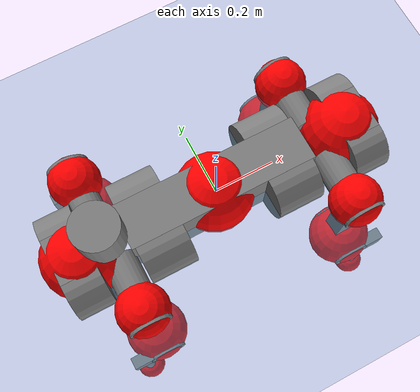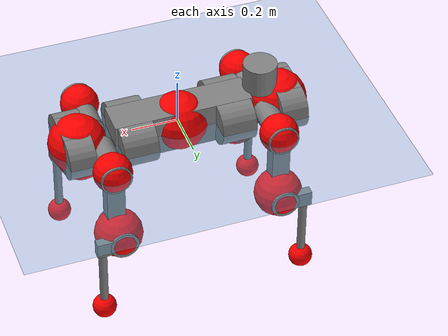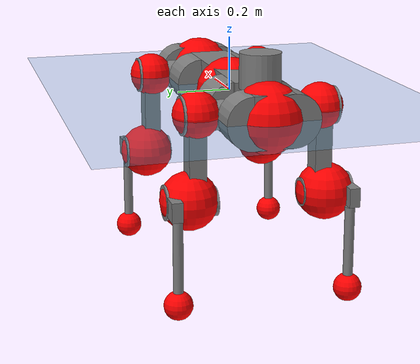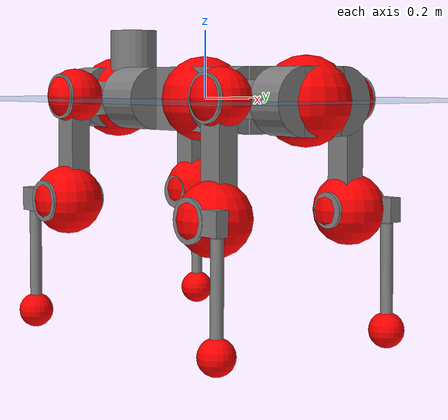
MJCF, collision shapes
<mujoco model="anymal_c">
  <compiler angle="radian" assetdir="assets" balanceinertia="true" inertiafromgeom="false"/>

  <option timestep="0.005" density="1.2" viscosity="2e-05"/>

  <size nkey="1"/>

  <visual>
    <quality shadowsize="8192"/>
    <map shadowclip="0.5"/>
  </visual>

  <default>
    <default class="/">
      <material specular="0" shininess="0.25"/>
      <geom contype="0" conaffinity="0" group="1" solref="-1000 -80"/>
      <site size="0.01 0.005 0.005" group="5"/>
      <general forcelimited="true" forcerange="-80 80" biastype="affine" gainprm="80" biasprm="0 -80 -2"/>
      <default class="anymal_c">
        <joint armature="0.01" damping="0.01" frictionloss="0.1"/>
        <default class="visual">
          <geom type="mesh" group="2"/>
          <default class="visual_zflip"/>
        </default>
        <default class="collision">
          <geom type="cylinder" group="3"/>
          <default class="foot">
            <geom size="0.03 0 0" type="sphere" condim="6" priority="1" friction="0.8 0.02 0.01" solimp="0.015 1 0.03"/>
          </default>
        </default>
      </default>
      <default class="reward_collision_sphere">
        <geom group="5" rgba="1 0 0 1"/>
      </default>
    </default>
  </default>

  <asset>
    <texture type="skybox" colorspace="auto" name="//unnamed_texture_0" builtin="gradient" rgb1="0.95 0.95 0.95" rgb2="0.95 0.95 0.95" width="100" height="600"/>
    <texture type="2d" colorspace="auto" name="texplane" builtin="checker" rgb1="0.345 0.575 0.748" rgb2="0.345 0.575 0.748" markrgb="1 1 1" width="512" height="512"/>
    <texture type="2d" colorspace="linear" name="base" file="base.png"/>
    <texture type="2d" colorspace="linear" name="top_shell" file="top_shell.png"/>
    <texture type="2d" colorspace="linear" name="bottom_shell" file="bottom_shell.png"/>
    <texture type="2d" colorspace="linear" name="remote" file="remote.png"/>
    <texture type="2d" colorspace="linear" name="hatch" file="hatch.png"/>
    <texture type="2d" colorspace="linear" name="handle" file="handle.png"/>
    <texture type="2d" colorspace="linear" name="face" file="face.png"/>
    <texture type="2d" colorspace="linear" name="battery" file="battery.png"/>
    <texture type="2d" colorspace="linear" name="lidar_cage" file="lidar_cage.png"/>
    <texture type="2d" colorspace="linear" name="depth_camera" file="depth_camera.png"/>
    <texture type="2d" colorspace="linear" name="wide_angle_camera" file="wide_angle_camera.png"/>
    <texture type="2d" colorspace="linear" name="lidar" file="lidar.png"/>
    <texture type="2d" colorspace="linear" name="drive" file="drive.png"/>
    <texture type="2d" colorspace="linear" name="hip_l" file="hip_l.png"/>
    <texture type="2d" colorspace="linear" name="shank_l" file="shank_l.png"/>
    <texture type="2d" colorspace="linear" name="foot" file="foot.png"/>
    <texture type="2d" colorspace="linear" name="thigh" file="thigh.png"/>
    <texture type="2d" colorspace="linear" name="shank_r" file="shank_r.png"/>
    <texture type="2d" colorspace="linear" name="hip_r" file="hip_r.png"/>
    <material name="MatPlane" class="/" texture="texplane" texuniform="true" texrepeat="2 2" specular="0.9" shininess="0.5"/>
    <material name="black_plastic" class="/" rgba="0.007 0.007 0.007 1"/>
    <material name="green" class="/" rgba="0.052 0.178 0.033 1"/>
    <material name="red" class="/" rgba="0.178 0.006 0.005 1"/>
    <material name="yellow" class="/" rgba="0.178 0.119 0.006 1"/>
    <material name="lwl" class="/" rgba="0.8 0.8 0.8 1"/>
    <material name="base" class="/" texture="base"/>
    <material name="top_shell" class="/" texture="top_shell"/>
    <material name="bottom_shell" class="/" texture="bottom_shell"/>
    <material name="hip_l" class="/" texture="hip_l"/>
    <material name="thigh" class="/" texture="thigh"/>
    <material name="shank_l" class="/" texture="shank_l"/>
    <material name="foot" class="/" texture="foot"/>
    <material name="hip_r" class="/" texture="hip_r"/>
    <material name="shank" class="/" texture="shank_r"/>
    <material name="hatch" class="/" texture="hatch"/>
    <material name="remote" class="/" texture="remote"/>
    <material name="handle" class="/" texture="handle"/>
    <material name="face" class="/" texture="face"/>
    <material name="depth_camera" class="/" texture="depth_camera"/>
    <material name="wide_angle_camera" class="/" texture="wide_angle_camera"/>
    <material name="battery" class="/" texture="battery"/>
    <material name="lidar_cage" class="/" texture="lidar_cage"/>
    <material name="lidar" class="/" texture="lidar"/>
    <material name="drive" class="/" texture="drive"/>
    <mesh name="base_0" class="/" file="base_0.obj"/>
    <mesh name="base_1" class="/" file="base_1.obj"/>
    <mesh name="base_2" class="/" file="base_2.obj"/>
    <mesh name="base_3" class="/" file="base_3.obj"/>
    <mesh name="base_4" class="/" file="base_4.obj"/>
    <mesh name="base_5" class="/" file="base_5.obj"/>
    <mesh name="top_shell" class="/" file="top_shell.obj"/>
    <mesh name="bottom_shell" class="/" file="bottom_shell.obj"/>
    <mesh name="remote" class="/" file="remote.obj"/>
    <mesh name="handle" class="/" file="handle.obj"/>
    <mesh name="face" class="/" file="face.obj"/>
    <mesh name="wide_angle_camera" class="/" file="wide_angle_camera.obj"/>
    <mesh name="depth_camera" class="/" file="depth_camera.obj"/>
    <mesh name="battery" class="/" file="battery.obj"/>
    <mesh name="lidar_cage" class="/" file="lidar_cage.obj"/>
    <mesh name="lidar" class="/" file="lidar.obj"/>
    <mesh name="drive" class="/" file="drive.obj"/>
    <mesh name="hip_l" class="/" file="hip_l.obj"/>
    <mesh name="thigh" class="/" file="thigh.obj"/>
    <mesh name="shank_l" class="/" file="shank_l.obj"/>
    <mesh name="foot" class="/" file="foot.obj"/>
    <mesh name="hip_r" class="/" file="hip_r.obj"/>
    <mesh name="hatch" class="/" file="hatch.obj"/>
    <mesh name="shank_r" class="/" file="shank_r.obj"/>
  </asset>

  <worldbody>
    <geom name="floor" class="/" size="100 100 0.125" type="plane" group="0" material="MatPlane"/>
    <light name="toplight_shadow" class="/" pos="0 0 5" dir="0.0990148 0.0990148 -0.990148" type="directional" ambient="0.04 0.04 0.04" diffuse="0.55 0.55 0.55" specular="0.12 0.12 0.12"/>
    <light name="toplight_fill" class="/" pos="0 0 5" dir="0.0990148 0.0990148 -0.990148" type="directional" castshadow="false" ambient="0.04 0.04 0.04" diffuse="0.3 0.3 0.3" specular="0.08 0.08 0.08"/>
    <body name="trunk" childclass="anymal_c" pos="-0.00599603 0.000105289 -0.0019865" quat="1 7.29375e-05 0.000760087 -0.000104515">
      <inertial pos="0.0024287 -0.00302703 0.0544391" quat="0.493929 0.501877 0.50112 0.503023" mass="22.6432" diaginertia="0.550077 0.694799 0.35623"/>
      <joint name="//unnamed_joint_0" type="free" armature="0" damping="0" frictionloss="0"/>
      <geom name="//unnamed_geom_1" class="visual" material="green" mesh="base_0"/>
      <geom name="//unnamed_geom_2" class="visual" material="yellow" mesh="base_1"/>
      <geom name="//unnamed_geom_3" class="visual" material="red" mesh="base_2"/>
      <geom name="//unnamed_geom_4" class="visual" material="black_plastic" mesh="base_3"/>
      <geom name="//unnamed_geom_5" class="visual" material="lwl" mesh="base_4"/>
      <geom name="//unnamed_geom_6" class="visual" material="base" mesh="base_5"/>
      <geom name="trunk_1" class="collision" size="0.304264 0.0734431 0.0944268" type="box"/>
      <geom name="trunk_2" class="collision" size="0.0944268 0.0760661" pos="0.217189 0.0729151 0" quat="0.707107 0 0.707107 0"/>
      <geom name="trunk_3" class="collision" size="0.0944268 0.0760661" pos="-0.217189 0.0729151 0" quat="0.707107 0 0.707107 0"/>
      <geom name="trunk_4" class="collision" size="0.0944268 0.0760661" pos="0.217189 -0.0729151 0" quat="0.707107 0 0.707107 0"/>
      <geom name="trunk_5" class="collision" size="0.0944268 0.0760661" pos="-0.217189 -0.0729151 0" quat="0.707107 0 0.707107 0"/>
      <geom name="//unnamed_geom_12" class="visual" material="top_shell" mesh="top_shell"/>
      <geom name="//unnamed_geom_13" class="visual" material="bottom_shell" mesh="bottom_shell"/>
      <geom name="//unnamed_geom_14" class="visual" material="remote" mesh="remote"/>
      <geom name="//unnamed_geom_15" class="visual" material="handle" mesh="handle"/>
      <geom name="//unnamed_geom_16" class="visual" pos="0.413907 0 0" quat="1 0 0 0" material="face" mesh="face"/>
      <geom name="trunk_6" class="collision" size="0.0577053 0.0734431 0.0944268" pos="0.468829 0 0" type="box"/>
      <geom name="//unnamed_geom_18" class="collision" size="0.0944268 0.0577053" pos="0.468829 0.0729151 0" quat="0.707107 0 0.707107 0"/>
      <geom name="//unnamed_geom_19" class="collision" size="0.0944268 0.0577053" pos="0.468829 -0.0729151 0" quat="0.707107 0 0.707107 0"/>
      <geom name="//unnamed_geom_20" class="visual" pos="0.460995 0 -0.0331612" quat="0.965926 0 0.258819 0" material="depth_camera" mesh="depth_camera"/>
      <geom name="//unnamed_geom_21" class="visual" pos="0.512267 0 0.016577" material="wide_angle_camera" mesh="wide_angle_camera"/>
      <geom name="//unnamed_geom_22" class="visual_zflip" pos="-0.413907 0 0" quat="0 0 0 1" material="face" mesh="face"/>
      <geom name="trunk_7" class="collision" size="0.0577053 0.0734431 0.0944268" pos="-0.468829 0 0" quat="0 0 0 1" type="box"/>
      <geom name="//unnamed_geom_24" class="collision" size="0.0944268 0.0577053" pos="-0.468829 -0.0729151 0" quat="0 -0.707107 0 0.707107"/>
      <geom name="//unnamed_geom_25" class="collision" size="0.0944268 0.0577053" pos="-0.468829 0.0729151 0" quat="0 -0.707107 0 0.707107"/>
      <geom name="//unnamed_geom_26" class="visual" pos="-0.460995 0 -0.0331612" quat="0 -0.258819 0 0.965926" material="depth_camera" mesh="depth_camera"/>
      <geom name="//unnamed_geom_27" class="visual_zflip" pos="-0.512267 0 0.016577" quat="0 0 0 1" material="wide_angle_camera" mesh="wide_angle_camera"/>
      <geom name="//unnamed_geom_28" class="visual" material="battery" mesh="battery"/>
      <geom name="//unnamed_geom_29" class="visual" pos="0 0.0802139 0.0313417" quat="0.683013 -0.183013 0.183013 0.683013" material="depth_camera" mesh="depth_camera"/>
      <geom name="//unnamed_geom_30" class="visual" pos="0 -0.0802139 0.0313417" quat="0.683013 0.183013 0.183013 -0.683013" material="depth_camera" mesh="depth_camera"/>
      <geom name="//unnamed_geom_31" class="visual" pos="-0.36348 0 0.08139" quat="1 0 0 0" material="lidar_cage" mesh="lidar_cage"/>
      <geom name="trunk_8" class="collision" size="0.0734431 0.0629512" pos="-0.36348 0 0.147831"/>
      <geom name="//unnamed_geom_33" class="visual" pos="-0.36348 1.69226e-05 0.157465" quat="0.707107 0 0 -0.707107" material="lidar" mesh="lidar"/>
      <geom name="//unnamed_geom_34" class="visual" pos="0.299471 0.108354 -1.13337e-09" quat="0.258819 0.965926 0 0" material="drive" mesh="drive"/>
      <geom name="//unnamed_geom_35" class="visual" pos="0.299471 -0.108354 1.13337e-09" quat="0.258819 -0.965926 0 0" material="drive" mesh="drive"/>
      <geom name="//unnamed_geom_36" class="visual" pos="-0.299471 0.108354 1.13337e-09" quat="0 0 0.965926 -0.258819" material="drive" mesh="drive"/>
      <geom name="//unnamed_geom_37" class="visual" pos="-0.299471 -0.108354 -1.13337e-09" quat="0 0 -0.965926 -0.258819" material="drive" mesh="drive"/>
      <geom name="//unnamed_geom_38" class="visual" pos="0.115834 0 0.0808363" quat="1 0 0 0" material="hatch" mesh="hatch"/>
      <geom name="//unnamed_geom_39" class="reward_collision_sphere" size="0.125902"/>
      <geom name="//unnamed_geom_40" class="reward_collision_sphere" size="0.125902" pos="0.449357 0 0"/>
      <geom name="//unnamed_geom_41" class="reward_collision_sphere" size="0.125902" pos="-0.449357 0 0"/>
      <site name="imu" pos="0.254766 -0.0019934 0.0885167" size="0.0104919"/>
      <camera name="track" pos="0 -2.08329 0" quat="0.707107 0.707107 0 0" mode="trackcom"/>
      <camera name="ego_camera" pos="0.449357 0 -0.0442939" quat="-0.5 -0.5 0.5 0.5"/>
      <body name="LF_HIP" pos="0.302749 0.110437 0.00150741" quat="0.256401 0.96657 -0.000587719 0.000446321">
        <inertial pos="0.0634804 -0.0157914 -0.00930539" quat="-0.128113 0.710118 -0.135402 0.678959" mass="3.08146" diaginertia="0.00557588 0.00617885 0.0052296"/>
        <joint name="LF_HAA" pos="0 0 0" axis="0.99904 0.0237953 0.0367691" stiffness="0.0299148" range="-0.761524 0.491181" armature="0.0142482" damping="0.0206963" frictionloss="0.099995"/>
        <geom name="//unnamed_geom_42" class="visual" pos="0 -6.66711e-05 1.09507e-05" quat="0.258819 -0.965926 0 0" material="hip_l" mesh="hip_l"/>
        <geom name="//unnamed_geom_43" class="visual" pos="0.0598144 -0.0730683 -0.042672" quat="0.183013 -0.683013 0.683013 0.183013" material="drive" mesh="drive"/>
        <geom name="//unnamed_geom_44" class="collision" size="0.0524594 0.0734431" pos="0.0598144 -0.0124579 -0.00764623" quat="-0.353553 -0.612372 0.612372 -0.353553"/>
        <body name="LF_THIGH" pos="0.0624172 -0.0772212 -0.0443156" quat="0.182994 -0.682848 0.68319 0.182986">
          <inertial pos="0.0294576 -7.38162e-05 -0.264106" quat="0.993069 -0.00739173 -0.0831608 0.0827266" mass="3.59359" diaginertia="0.0302727 0.0362338 0.00680518"/>
          <joint name="LF_HFE" pos="0 0 0" axis="0.999984 -0.00204114 0.00529986" stiffness="0.0117448" range="-3.14659 3.13111" armature="0.00765693" damping="0.0162912" frictionloss="0.114713"/>
          <geom name="//unnamed_geom_45" class="visual" pos="-0.000857002 -1.35043e-06 0" quat="0.707107 0 0 -0.707107" material="thigh" mesh="thigh"/>
          <geom name="//unnamed_geom_46" class="collision" size="0.0681972 0.0419675" pos="0.0399428 0 0" quat="0.5 0.5 -0.5 -0.5"/>
          <geom name="//unnamed_geom_47" class="collision" size="0.0393445 0.0314756 0.148265" pos="0.0299571 0 -0.156484" quat="0.707107 0 0 -0.707107" type="box"/>
          <geom name="//unnamed_geom_48" class="visual" pos="0.100157 0 -0.315594" quat="1 0 0 0" material="drive" mesh="drive"/>
          <geom name="//unnamed_geom_49" class="collision" size="0.0524594 0.0734431" pos="0.0302567 0 -0.315594" quat="0.707107 0 0.707107 0"/>
          <geom name="//unnamed_geom_50" class="reward_collision_sphere" size="0.083935" pos="0.0249643 0 0"/>
          <body name="LF_SHANK" pos="0.102191 0.0082341 -0.317216" quat="0.999998 -0.00100859 -0.00101435 -0.00101803">
            <inertial pos="0.00464537 -0.0653859 -0.0888195" quat="0.993546 -0.099402 -0.0122185 -0.0532652" mass="0.642754" diaginertia="0.01031 0.0109964 0.00192979"/>
            <joint name="LF_KFE" pos="0 0 0" axis="0.999991 -0.00402032 -0.00127305" stiffness="0.00131037" range="-3.13443 3.09706" armature="0.0104097" damping="0.0245881" frictionloss="0.115986"/>
            <geom name="//unnamed_geom_51" class="visual" pos="-0.00027945 -0.00149004 0" quat="0.707107 0 0 -0.707107" material="shank_l" mesh="shank_l"/>
            <geom name="LF_kfe_act" class="collision" size="0.0629512 0.0209837" pos="0.0199714 0 0" quat="0.5 0.5 -0.5 -0.5"/>
            <geom name="//unnamed_geom_53" class="collision" size="0.0603272 0.0354101 0.0199346" pos="0.0199714 -0.0598935 0" quat="0.5 0.5 -0.5 -0.5" type="box"/>
            <geom name="//unnamed_geom_54" class="visual" pos="0.0130314 -0.0920928 -0.37425" quat="0.382683 0 0 -0.92388" material="foot" mesh="foot"/>
            <geom name="LF_calf" class="collision" size="0.0183608 0.1482" pos="0.0130313 -0.0916126 -0.187125" quat="0.707107 0 0 -0.707107"/>
            <geom name="LF_foot" class="foot" size="0.0279313" pos="0.0130313 -0.0916126 -0.349335" quat="0.707107 0 0 -0.707107"/>
            <geom name="//unnamed_geom_57" class="reward_collision_sphere" size="0.104919" pos="-0.0499285 0 0"/>
            <geom name="//unnamed_geom_58" class="reward_collision_sphere" size="0.0524594" pos="0.0130313 -0.0916126 -0.349335"/>
            <site name="LF_foot" class="foot" pos="0.0130313 -0.0916126 -0.349335" quat="0.707107 0 0 -0.707107" size="0.0104919"/>
          </body>
        </body>
      </body>
      <body name="RF_HIP" pos="0.307549 -0.116171 0.00474628" quat="0.257928 -0.966163 -0.000468595 -0.00111605">
        <inertial pos="0.0489792 0.0174432 -0.00267216" quat="0.143583 0.672842 0.126337 0.714637" mass="3.00036" diaginertia="0.00517186 0.00568494 0.00500247"/>
        <joint name="RF_HAA" pos="0 0 0" axis="0.999589 -0.0209436 0.0195592" range="-0.355935 0.765068" armature="0.0104254" damping="0.0215759" frictionloss="0.1316"/>
        <geom name="//unnamed_geom_59" class="visual" pos="0 6.66706e-05 1.09506e-05" quat="0.258819 0.965926 0 0" material="hip_r" mesh="hip_r"/>
        <geom name="//unnamed_geom_60" class="visual" pos="0.0598144 0.0730683 -0.042672" quat="0.183013 0.683013 0.683013 -0.183013" material="drive" mesh="drive"/>
        <geom name="//unnamed_geom_61" class="collision" size="0.0524594 0.0734431" pos="0.0598144 0.0124579 -0.00764623" quat="-0.353553 0.612372 0.612372 0.353553"/>
        <body name="RF_THIGH" pos="0.0607649 0.0751002 -0.0485012" quat="0.183137 0.683136 0.682927 -0.182747">
          <inertial pos="0.0319895 -0.00879768 -0.270754" quat="0.992609 -0.00713772 -0.079638 0.0912877" mass="3.57581" diaginertia="0.0297157 0.0379381 0.00701251"/>
          <joint name="RF_HFE" pos="0 0 0" axis="0.999902 -0.00179815 -0.0138727" range="-3.18657 3.11849" armature="0.00981052" damping="0.0271873" frictionloss="0.11487"/>
          <geom name="//unnamed_geom_62" class="visual" pos="-0.000857002 -1.35043e-06 0" quat="0.707107 0 0 -0.707107" material="thigh" mesh="thigh"/>
          <geom name="//unnamed_geom_63" class="collision" size="0.0681972 0.0419675" pos="0.0399428 0 0" quat="0.5 0.5 0.5 0.5"/>
          <geom name="//unnamed_geom_64" class="collision" size="0.0393445 0.0314756 0.148265" pos="0.0299571 0 -0.156484" quat="0.707107 0 0 0.707107" type="box"/>
          <geom name="//unnamed_geom_65" class="visual" pos="0.100157 0 -0.315594" quat="1 0 0 0" material="drive" mesh="drive"/>
          <geom name="//unnamed_geom_66" class="collision" size="0.0524594 0.0734431" pos="0.0302567 0 -0.315594" quat="0.707107 0 0.707107 0"/>
          <geom name="//unnamed_geom_67" class="reward_collision_sphere" size="0.083935" pos="0.0249643 0 0"/>
          <body name="RF_SHANK" pos="0.0967975 0.00133026 -0.320896" quat="0.999992 0.000106945 -0.00354059 0.00166088">
            <inertial pos="-0.00349475 0.0665478 -0.0943662" quat="0.99398 0.106224 -0.000169467 0.0268372" mass="0.704205" diaginertia="0.00968139 0.0102821 0.00163714"/>
            <joint name="RF_KFE" pos="0 0 0" axis="0.999992 0.0037542 -0.00104848" range="-3.00019 3.09801" armature="0.0117192" damping="0" frictionloss="0.0746294"/>
            <geom name="//unnamed_geom_68" class="visual" pos="-0.000279448 0.00149004 0" quat="0.707107 0 0 0.707107" material="shank" mesh="shank_r"/>
            <geom name="RF_kfe_act" class="collision" size="0.0629512 0.0209837" pos="0.0199714 0 0" quat="0.5 0.5 0.5 0.5"/>
            <geom name="//unnamed_geom_70" class="collision" size="0.0603272 0.0354101 0.0199346" pos="0.0199714 0.0598935 0" quat="0.5 0.5 0.5 0.5" type="box"/>
            <geom name="//unnamed_geom_71" class="visual" pos="0.0130313 0.0920928 -0.37425" quat="0.382683 0 0 0.92388" material="foot" mesh="foot"/>
            <geom name="RF_calf" class="collision" size="0.0183608 0.1482" pos="0.0130313 0.0916126 -0.187125" quat="0.707107 0 0 0.707107"/>
            <geom name="RF_foot" class="foot" size="0.029972" pos="0.0130313 0.0916126 -0.349335" quat="0.707107 0 0 0.707107"/>
            <geom name="//unnamed_geom_74" class="reward_collision_sphere" size="0.104919" pos="-0.0499285 0 0"/>
            <geom name="//unnamed_geom_75" class="reward_collision_sphere" size="0.0524594" pos="0.0130313 0.0916126 -0.349335"/>
            <site name="RF_foot" class="foot" pos="0.0130313 0.0916126 -0.349335" quat="0.707107 0 0 0.707107" size="0.0104919"/>
          </body>
        </body>
      </body>
      <body name="LH_HIP" pos="-0.308591 0.114102 0.0012009" quat="-0.000250241 0.000159499 0.965908 -0.258884">
        <inertial pos="0.0495802 0.0245455 -0.00961772" quat="0.154345 0.668025 0.113372 0.719073" mass="3.25252" diaginertia="0.00572897 0.00599047 0.00585563"/>
        <joint name="LH_HAA" pos="0 0 0" axis="0.999998 0.0020155 0.000625183" range="-0.555415 0.724215" armature="0.0105942" damping="0.00528331" frictionloss="0.101955"/>
        <geom name="//unnamed_geom_76" class="visual" pos="0 6.66706e-05 1.09506e-05" quat="-0.258819 -0.965926 0 0" material="hip_r" mesh="hip_r"/>
        <geom name="//unnamed_geom_77" class="visual" pos="0.0598144 0.0730683 -0.042672" quat="0.183013 0.683013 0.683013 -0.183013" material="drive" mesh="drive"/>
        <geom name="//unnamed_geom_78" class="collision" size="0.0524594 0.0734431" pos="0.0598144 0.0124579 -0.00764623" quat="-0.353553 0.612372 0.612372 0.353553"/>
        <body name="LH_THIGH" pos="0.0579471 0.0753393 -0.0497491" quat="0.182931 0.68314 0.68287 -0.183151">
          <inertial pos="0.0325538 -0.00740039 -0.269927" quat="0.994431 0.0062077 -0.0773428 0.0713185" mass="3.46228" diaginertia="0.0297782 0.0358417 0.00734664"/>
          <joint name="LH_HFE" pos="0 0 0" axis="0.999483 -0.00195367 -0.0320918" stiffness="0.0177899" range="-3.20477 3.08941" armature="0.00699917" damping="0.011521" frictionloss="0.0777814"/>
          <geom name="//unnamed_geom_79" class="visual" pos="-0.000857002 -1.35043e-06 0" quat="0.707107 0 0 -0.707107" material="thigh" mesh="thigh"/>
          <geom name="//unnamed_geom_80" class="collision" size="0.0681972 0.0419675" pos="0.0399428 0 0" quat="0.5 0.5 -0.5 -0.5"/>
          <geom name="//unnamed_geom_81" class="collision" size="0.0393445 0.0314756 0.148265" pos="0.0299571 0 -0.156484" quat="0.707107 0 0 -0.707107" type="box"/>
          <geom name="//unnamed_geom_82" class="visual" pos="0.100157 0 -0.315594" quat="1 0 0 0" material="drive" mesh="drive"/>
          <geom name="//unnamed_geom_83" class="collision" size="0.0524594 0.0734431" pos="0.0302567 0 -0.315594" quat="0.707107 0 0.707107 0"/>
          <geom name="//unnamed_geom_84" class="reward_collision_sphere" size="0.083935" pos="0.0249643 0 0"/>
          <body name="LH_SHANK" pos="0.10263 -0.00514162 -0.307282" quat="0.999991 0.000592692 -0.0035937 -0.00194396">
            <inertial pos="0.00762109 0.0634315 -0.098376" quat="0.992073 0.123212 -0.00295671 0.0245025" mass="0.734649" diaginertia="0.00994874 0.0114218 0.00189441"/>
            <joint name="LH_KFE" pos="0 0 0" axis="1 3.07318e-05 -2.21402e-05" stiffness="0.0025172" range="-3.11324 3.19133" armature="0.0112669" damping="0.0122216" frictionloss="0.127659"/>
            <geom name="//unnamed_geom_85" class="visual" pos="-0.000279448 0.00149004 0" quat="-0.707107 0 0 -0.707107" material="shank" mesh="shank_r"/>
            <geom name="LH_kfe_act" class="collision" size="0.0629512 0.0209837" pos="0.0199714 0 0" quat="0.5 0.5 -0.5 -0.5"/>
            <geom name="//unnamed_geom_87" class="collision" size="0.0603272 0.0354101 0.0199346" pos="0.0199714 0.0598935 0" quat="0.5 0.5 -0.5 -0.5" type="box"/>
            <geom name="//unnamed_geom_88" class="visual" pos="0.0130313 0.0920928 -0.37425" quat="-0.382683 0 0 -0.92388" material="foot" mesh="foot"/>
            <geom name="LH_calf" class="collision" size="0.0183608 0.1482" pos="0.0130313 0.0916126 -0.187125" quat="0.707107 0 0 -0.707107"/>
            <geom name="LH_foot" class="foot" size="0.0370462" pos="0.0130313 0.0916126 -0.349335" quat="0.707107 0 0 -0.707107"/>
            <geom name="//unnamed_geom_91" class="reward_collision_sphere" size="0.104919" pos="-0.0499285 0 0"/>
            <geom name="//unnamed_geom_92" class="reward_collision_sphere" size="0.0524594" pos="0.0130313 0.0916126 -0.349335"/>
            <site name="LH_foot" class="foot" pos="0.0130313 0.0916126 -0.349335" quat="0.707107 0 0 -0.707107" size="0.0104919"/>
          </body>
        </body>
      </body>
      <body name="RH_HIP" pos="-0.292293 -0.108304 -0.0015297" quat="-3.45558e-05 -9.88093e-05 -0.965912 -0.258871">
        <inertial pos="0.0529151 -0.0173505 -0.0100301" quat="-0.108759 0.697716 -0.161954 0.689301" mass="3.12476" diaginertia="0.00553815 0.00567912 0.00518188"/>
        <joint name="RH_HAA" pos="0 0 0" axis="0.999262 0.0330778 -0.0195036" range="-0.738573 0.50684" armature="0.0104137" damping="0.00444805" frictionloss="0.110411"/>
        <geom name="//unnamed_geom_93" class="visual" pos="0 -6.66711e-05 1.09507e-05" quat="-0.258819 0.965926 0 0" material="hip_l" mesh="hip_l"/>
        <geom name="//unnamed_geom_94" class="visual" pos="0.0598144 -0.0730683 -0.042672" quat="-0.183013 0.683013 -0.683013 -0.183013" material="drive" mesh="drive"/>
        <geom name="//unnamed_geom_95" class="collision" size="0.0524594 0.0734431" pos="0.0598144 -0.0124579 -0.00764623" quat="0.353553 0.612372 -0.612372 0.353553"/>
        <body name="RH_THIGH" pos="0.0623648 -0.0764791 -0.0524652" quat="-0.1831 0.683079 -0.682875 -0.183191">
          <inertial pos="0.0323597 -0.00228731 -0.271022" quat="0.996348 0.0137754 -0.045652 0.0708327" mass="3.50127" diaginertia="0.0296217 0.0345962 0.00626234"/>
          <joint name="RH_HFE" pos="0 0 0" axis="0.99997 0.00766648 0.00116729" stiffness="0.0178639" range="-3.12619 3.1513" armature="0.00805272" damping="0.0361436" frictionloss="0.110467"/>
          <geom name="//unnamed_geom_96" class="visual" pos="-0.000857002 -1.35043e-06 0" quat="0.707107 0 0 -0.707107" material="thigh" mesh="thigh"/>
          <geom name="//unnamed_geom_97" class="collision" size="0.0681972 0.0419675" pos="0.0399428 0 0" quat="0.5 0.5 0.5 0.5"/>
          <geom name="//unnamed_geom_98" class="collision" size="0.0393445 0.0314756 0.148265" pos="0.0299571 0 -0.156484" quat="0.707107 0 0 0.707107" type="box"/>
          <geom name="//unnamed_geom_99" class="visual" pos="0.100157 0 -0.315594" quat="1 0 0 0" material="drive" mesh="drive"/>
          <geom name="//unnamed_geom_100" class="collision" size="0.0524594 0.0734431" pos="0.0302567 0 -0.315594" quat="0.707107 0 0.707107 0"/>
          <geom name="//unnamed_geom_101" class="reward_collision_sphere" size="0.083935" pos="0.0249643 0 0"/>
          <body name="RH_SHANK" pos="0.100623 -0.0015895 -0.31721" quat="1 -0.000446149 -6.98977e-05 9.16173e-05">
            <inertial pos="0.0113019 -0.0559501 -0.0963425" quat="0.99256 -0.117468 -0.00851382 -0.0308915" mass="0.618591" diaginertia="0.0101848 0.0102712 0.00179999"/>
            <joint name="RH_KFE" pos="0 0 0" axis="0.999998 -0.00171723 0.000359294" range="-3.14287 2.99858" armature="0.0101812" damping="0.0124409" frictionloss="0.0666883"/>
            <geom name="//unnamed_geom_102" class="visual" pos="-0.00027945 -0.00149004 0" quat="0.707107 0 0 -0.707107" material="shank_l" mesh="shank_l"/>
            <geom name="RH_kfe_act" class="collision" size="0.0629512 0.0209837" pos="0.0199714 0 0" quat="0.5 0.5 0.5 0.5"/>
            <geom name="//unnamed_geom_104" class="collision" size="0.0603272 0.0354101 0.0199346" pos="0.0199714 -0.0598935 0" quat="0.5 0.5 0.5 0.5" type="box"/>
            <geom name="//unnamed_geom_105" class="visual" pos="0.0130314 -0.0920928 -0.37425" quat="0.382683 0 0 -0.92388" material="foot" mesh="foot"/>
            <geom name="RH_calf" class="collision" size="0.0183608 0.1482" pos="0.0130313 -0.0916126 -0.187125" quat="0.707107 0 0 0.707107"/>
            <geom name="RH_foot" class="foot" size="0.0233811" pos="0.0130313 -0.0916126 -0.349335" quat="0.707107 0 0 0.707107"/>
            <geom name="//unnamed_geom_108" class="reward_collision_sphere" size="0.104919" pos="-0.0499285 0 0"/>
            <geom name="//unnamed_geom_109" class="reward_collision_sphere" size="0.0524594" pos="0.0130313 -0.0916126 -0.349335"/>
            <site name="RH_foot" class="foot" pos="0.0130313 -0.0916126 -0.349335" quat="0.707107 0 0 0.707107" size="0.0104919"/>
          </body>
        </body>
      </body>
    </body>
  </worldbody>

  <contact>
    <pair class="/" geom1="floor" geom2="LF_foot" name="//unnamed_contact_0"/>
    <pair class="/" geom1="floor" geom2="RF_foot" name="//unnamed_contact_1"/>
    <pair class="/" geom1="floor" geom2="LH_foot" name="//unnamed_contact_2"/>
    <pair class="/" geom1="floor" geom2="RH_foot" name="//unnamed_contact_3"/>
  </contact>

  <actuator>
    <general name="LF_HAA" class="/" joint="LF_HAA" forcerange="-82.1884 82.1884" gainprm="84.2206" biasprm="0 -84.2206 -2.16739"/>
    <general name="LF_HFE" class="/" joint="LF_HFE" forcerange="-100.085 100.085" gainprm="84.2206" biasprm="0 -84.2206 -2.16739"/>
    <general name="LF_KFE" class="/" joint="LF_KFE" forcerange="-83.0801 83.0801" gainprm="84.2206" biasprm="0 -84.2206 -2.16739"/>
    <general name="RF_HAA" class="/" joint="RF_HAA" forcerange="-84.0597 84.0597" gainprm="84.2206" biasprm="0 -84.2206 -2.16739"/>
    <general name="RF_HFE" class="/" joint="RF_HFE" forcerange="-93.3788 93.3788" gainprm="84.2206" biasprm="0 -84.2206 -2.16739"/>
    <general name="RF_KFE" class="/" joint="RF_KFE" forcerange="-77.4406 77.4406" gainprm="84.2206" biasprm="0 -84.2206 -2.16739"/>
    <general name="LH_HAA" class="/" joint="LH_HAA" forcerange="-82.6485 82.6485" gainprm="84.2206" biasprm="0 -84.2206 -2.16739"/>
    <general name="LH_HFE" class="/" joint="LH_HFE" forcerange="-76.4318 76.4318" gainprm="84.2206" biasprm="0 -84.2206 -2.16739"/>
    <general name="LH_KFE" class="/" joint="LH_KFE" forcerange="-89.5039 89.5039" gainprm="84.2206" biasprm="0 -84.2206 -2.16739"/>
    <general name="RH_HAA" class="/" joint="RH_HAA" forcerange="-80.1246 80.1246" gainprm="84.2206" biasprm="0 -84.2206 -2.16739"/>
    <general name="RH_HFE" class="/" joint="RH_HFE" forcerange="-87.5166 87.5166" gainprm="84.2206" biasprm="0 -84.2206 -2.16739"/>
    <general name="RH_KFE" class="/" joint="RH_KFE" forcerange="-110.044 110.044" gainprm="84.2206" biasprm="0 -84.2206 -2.16739"/>
  </actuator>

  <sensor>
    <gyro site="imu" name="imu_angular_velocity"/>
    <velocimeter site="imu" name="imu_linear_velocity"/>
    <framelinvel objtype="site" objname="LF_foot" name="LF_foot_global_linear_velocity"/>
    <framelinvel objtype="site" objname="RF_foot" name="RF_foot_global_linear_velocity"/>
    <framelinvel objtype="site" objname="LH_foot" name="LH_foot_global_linear_velocity"/>
    <framelinvel objtype="site" objname="RH_foot" name="RH_foot_global_linear_velocity"/>
  </sensor>

  <keyframe>
    <key name="home" qpos="0 0 0.55 1 0 0 0 0 0.4 -0.8 0 -0.4 0.8 0 -0.4 0.8 0 0.4 -0.8"/>
  </keyframe>
</mujoco>
